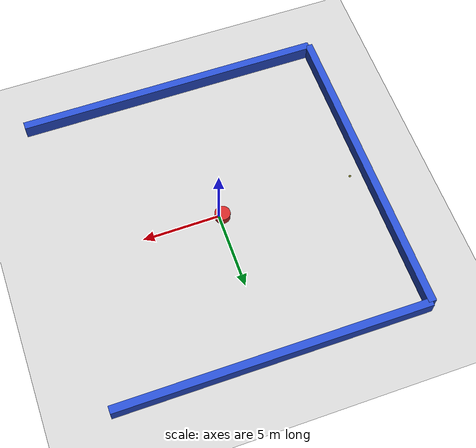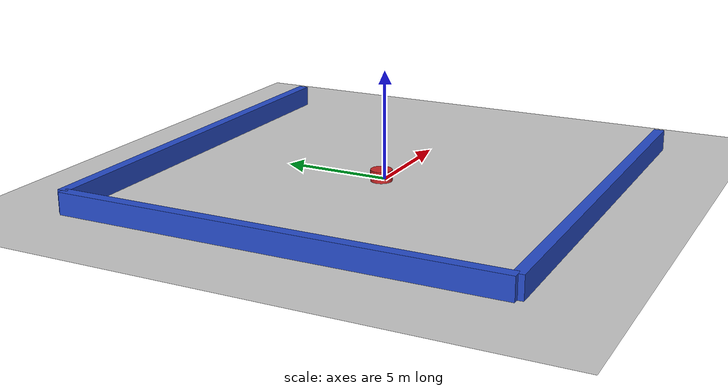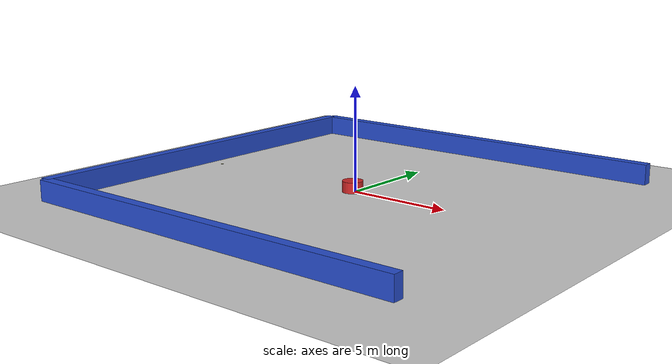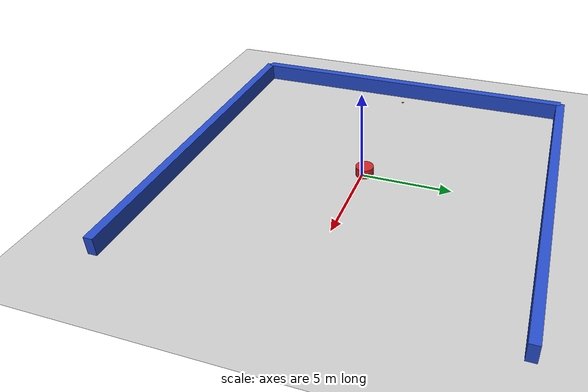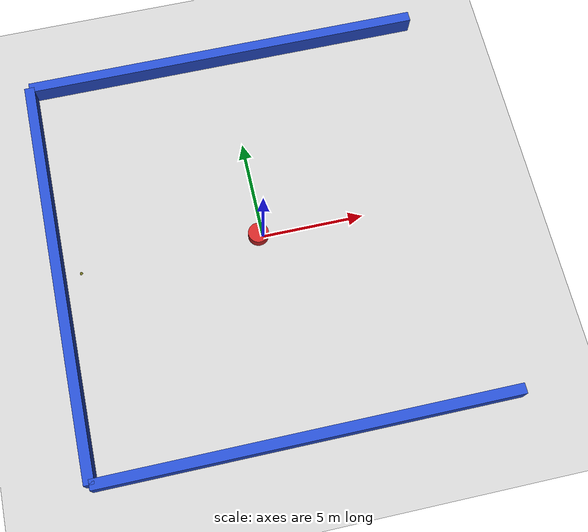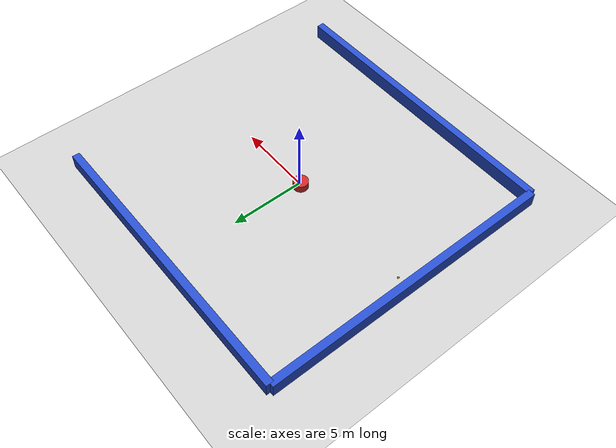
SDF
<sdf version="1.6">
   <world name="default">
      <include>
         <uri>model://ground_plane</uri>
      </include>
      <include>
         <uri>model://sun</uri>
      </include>

    <model name="mediumlibobs_177">
      <static>1</static>
      <pose frame="">-0.225000 0.075000 0.000000 0.000000 0.000000 0.000000</pose>
      <link name="link">
        <inertial>
          <mass>1</mass>
          <inertia>
            <ixx>0.145833</ixx>
            <ixy>0</ixy>
            <ixz>0</ixz>
            <iyy>0.145833</iyy>
            <iyz>0</iyz>
            <izz>0.125</izz>
          </inertia>
        </inertial>
        <collision name="collision">
           <geometry>
            <cylinder>
                <radius>0.5000</radius>
                 <length> 1 </length>
            </cylinder>
          </geometry>
           <surface>
            <contact>
              <ode />
            </contact>
            <bounce />
            <friction>
              <torsional>
                <ode />
              </torsional>
              <ode />
            </friction>
          </surface>
        </collision>
        <visual name="visual">
           <geometry>
            <cylinder>
                <radius>0.5000</radius>
                 <length> 1 </length>
            </cylinder>
          </geometry>
          <material>
            <script>
              <name>Gazebo/Red</name>
              <uri>file://media/materials/scripts/gazebo.material</uri>
            </script>
          </material>
        </visual>
        <self_collide>0</self_collide>
        <kinematic>0</kinematic>
        <gravity>1</gravity>
      </link>
      <plugin name="mediumlibobs_177" filename="mediumlibobs_177.so" />
    </model>

    <model name="hardlibobs_102">
      <static>1</static>
      <pose frame="">-0.225000 0.075000 0.000000 0.000000 0.000000 0.000000</pose>
      <link name="link">
        <inertial>
          <mass>1</mass>
          <inertia>
            <ixx>0.145833</ixx>
            <ixy>0</ixy>
            <ixz>0</ixz>
            <iyy>0.145833</iyy>
            <iyz>0</iyz>
            <izz>0.125</izz>
          </inertia>
        </inertial>
        <collision name="collision">
           <geometry>
            <cylinder>
                <radius>0.5000</radius>
                 <length> 1 </length>
            </cylinder>
          </geometry>
           <surface>
            <contact>
              <ode />
            </contact>
            <bounce />
            <friction>
              <torsional>
                <ode />
              </torsional>
              <ode />
            </friction>
          </surface>
        </collision>
        <visual name="visual">
           <geometry>
            <cylinder>
                <radius>0.5000</radius>
                 <length> 1 </length>
            </cylinder>
          </geometry>
          <material>
            <script>
              <name>Gazebo/Red</name>
              <uri>file://media/materials/scripts/gazebo.material</uri>
            </script>
          </material>
        </visual>
        <self_collide>0</self_collide>
        <kinematic>0</kinematic>
        <gravity>1</gravity>
      </link>
      <plugin name="hardlibobs_102" filename="hardlibobs_102.so" />
    </model>

    <model name="hardlibobs_54">
      <static>1</static>
      <pose frame="">-0.225000 0.075000 0.000000 0.000000 0.000000 0.000000</pose>
      <link name="link">
        <inertial>
          <mass>1</mass>
          <inertia>
            <ixx>0.145833</ixx>
            <ixy>0</ixy>
            <ixz>0</ixz>
            <iyy>0.145833</iyy>
            <iyz>0</iyz>
            <izz>0.125</izz>
          </inertia>
        </inertial>
        <collision name="collision">
           <geometry>
            <cylinder>
                <radius>0.5000</radius>
                 <length> 1 </length>
            </cylinder>
          </geometry>
           <surface>
            <contact>
              <ode />
            </contact>
            <bounce />
            <friction>
              <torsional>
                <ode />
              </torsional>
              <ode />
            </friction>
          </surface>
        </collision>
        <visual name="visual">
           <geometry>
            <cylinder>
                <radius>0.5000</radius>
                 <length> 1 </length>
            </cylinder>
          </geometry>
          <material>
            <script>
              <name>Gazebo/Red</name>
              <uri>file://media/materials/scripts/gazebo.material</uri>
            </script>
          </material>
        </visual>
        <self_collide>0</self_collide>
        <kinematic>0</kinematic>
        <gravity>1</gravity>
      </link>
      <plugin name="hardlibobs_54" filename="hardlibobs_54.so" />
    </model>

    <model name="hardlibobs_53">
      <static>1</static>
      <pose frame="">-0.225000 0.075000 0.000000 0.000000 0.000000 0.000000</pose>
      <link name="link">
        <inertial>
          <mass>1</mass>
          <inertia>
            <ixx>0.145833</ixx>
            <ixy>0</ixy>
            <ixz>0</ixz>
            <iyy>0.145833</iyy>
            <iyz>0</iyz>
            <izz>0.125</izz>
          </inertia>
        </inertial>
        <collision name="collision">
           <geometry>
            <cylinder>
                <radius>0.5000</radius>
                 <length> 1 </length>
            </cylinder>
          </geometry>
           <surface>
            <contact>
              <ode />
            </contact>
            <bounce />
            <friction>
              <torsional>
                <ode />
              </torsional>
              <ode />
            </friction>
          </surface>
        </collision>
        <visual name="visual">
           <geometry>
            <cylinder>
                <radius>0.5000</radius>
                 <length> 1 </length>
            </cylinder>
          </geometry>
          <material>
            <script>
              <name>Gazebo/Red</name>
              <uri>file://media/materials/scripts/gazebo.material</uri>
            </script>
          </material>
        </visual>
        <self_collide>0</self_collide>
        <kinematic>0</kinematic>
        <gravity>1</gravity>
      </link>
      <plugin name="hardlibobs_53" filename="hardlibobs_53.so" />
    </model>

    <model name="mediumlibobs_122">
      <static>1</static>
      <pose frame="">-0.225000 0.075000 0.000000 0.000000 0.000000 0.000000</pose>
      <link name="link">
        <inertial>
          <mass>1</mass>
          <inertia>
            <ixx>0.145833</ixx>
            <ixy>0</ixy>
            <ixz>0</ixz>
            <iyy>0.145833</iyy>
            <iyz>0</iyz>
            <izz>0.125</izz>
          </inertia>
        </inertial>
        <collision name="collision">
           <geometry>
            <cylinder>
                <radius>0.5000</radius>
                 <length> 1 </length>
            </cylinder>
          </geometry>
           <surface>
            <contact>
              <ode />
            </contact>
            <bounce />
            <friction>
              <torsional>
                <ode />
              </torsional>
              <ode />
            </friction>
          </surface>
        </collision>
        <visual name="visual">
           <geometry>
            <cylinder>
                <radius>0.5000</radius>
                 <length> 1 </length>
            </cylinder>
          </geometry>
          <material>
            <script>
              <name>Gazebo/Red</name>
              <uri>file://media/materials/scripts/gazebo.material</uri>
            </script>
          </material>
        </visual>
        <self_collide>0</self_collide>
        <kinematic>0</kinematic>
        <gravity>1</gravity>
      </link>
      <plugin name="mediumlibobs_122" filename="mediumlibobs_122.so" />
    </model>

    <model name="mediumlibobs_140">
      <static>1</static>
      <pose frame="">-0.225000 0.075000 0.000000 0.000000 0.000000 0.000000</pose>
      <link name="link">
        <inertial>
          <mass>1</mass>
          <inertia>
            <ixx>0.145833</ixx>
            <ixy>0</ixy>
            <ixz>0</ixz>
            <iyy>0.145833</iyy>
            <iyz>0</iyz>
            <izz>0.125</izz>
          </inertia>
        </inertial>
        <collision name="collision">
           <geometry>
            <cylinder>
                <radius>0.5000</radius>
                 <length> 1 </length>
            </cylinder>
          </geometry>
           <surface>
            <contact>
              <ode />
            </contact>
            <bounce />
            <friction>
              <torsional>
                <ode />
              </torsional>
              <ode />
            </friction>
          </surface>
        </collision>
        <visual name="visual">
           <geometry>
            <cylinder>
                <radius>0.5000</radius>
                 <length> 1 </length>
            </cylinder>
          </geometry>
          <material>
            <script>
              <name>Gazebo/Red</name>
              <uri>file://media/materials/scripts/gazebo.material</uri>
            </script>
          </material>
        </visual>
        <self_collide>0</self_collide>
        <kinematic>0</kinematic>
        <gravity>1</gravity>
      </link>
      <plugin name="mediumlibobs_140" filename="mediumlibobs_140.so" />
    </model>

    <model name="mediumlibobs_172">
      <static>1</static>
      <pose frame="">-0.225000 0.075000 0.000000 0.000000 0.000000 0.000000</pose>
      <link name="link">
        <inertial>
          <mass>1</mass>
          <inertia>
            <ixx>0.145833</ixx>
            <ixy>0</ixy>
            <ixz>0</ixz>
            <iyy>0.145833</iyy>
            <iyz>0</iyz>
            <izz>0.125</izz>
          </inertia>
        </inertial>
        <collision name="collision">
           <geometry>
            <cylinder>
                <radius>0.5000</radius>
                 <length> 1 </length>
            </cylinder>
          </geometry>
           <surface>
            <contact>
              <ode />
            </contact>
            <bounce />
            <friction>
              <torsional>
                <ode />
              </torsional>
              <ode />
            </friction>
          </surface>
        </collision>
        <visual name="visual">
           <geometry>
            <cylinder>
                <radius>0.5000</radius>
                 <length> 1 </length>
            </cylinder>
          </geometry>
          <material>
            <script>
              <name>Gazebo/Red</name>
              <uri>file://media/materials/scripts/gazebo.material</uri>
            </script>
          </material>
        </visual>
        <self_collide>0</self_collide>
        <kinematic>0</kinematic>
        <gravity>1</gravity>
      </link>
      <plugin name="mediumlibobs_172" filename="mediumlibobs_172.so" />
    </model>

    <model name="mediumlibobs_195">
      <static>1</static>
      <pose frame="">-0.225000 0.075000 0.000000 0.000000 0.000000 0.000000</pose>
      <link name="link">
        <inertial>
          <mass>1</mass>
          <inertia>
            <ixx>0.145833</ixx>
            <ixy>0</ixy>
            <ixz>0</ixz>
            <iyy>0.145833</iyy>
            <iyz>0</iyz>
            <izz>0.125</izz>
          </inertia>
        </inertial>
        <collision name="collision">
           <geometry>
            <cylinder>
                <radius>0.5000</radius>
                 <length> 1 </length>
            </cylinder>
          </geometry>
           <surface>
            <contact>
              <ode />
            </contact>
            <bounce />
            <friction>
              <torsional>
                <ode />
              </torsional>
              <ode />
            </friction>
          </surface>
        </collision>
        <visual name="visual">
           <geometry>
            <cylinder>
                <radius>0.5000</radius>
                 <length> 1 </length>
            </cylinder>
          </geometry>
          <material>
            <script>
              <name>Gazebo/Red</name>
              <uri>file://media/materials/scripts/gazebo.material</uri>
            </script>
          </material>
        </visual>
        <self_collide>0</self_collide>
        <kinematic>0</kinematic>
        <gravity>1</gravity>
      </link>
      <plugin name="mediumlibobs_195" filename="mediumlibobs_195.so" />
    </model>

    <model name="mediumlibobs_115">
      <static>1</static>
      <pose frame="">-0.225000 0.075000 0.000000 0.000000 0.000000 0.000000</pose>
      <link name="link">
        <inertial>
          <mass>1</mass>
          <inertia>
            <ixx>0.145833</ixx>
            <ixy>0</ixy>
            <ixz>0</ixz>
            <iyy>0.145833</iyy>
            <iyz>0</iyz>
            <izz>0.125</izz>
          </inertia>
        </inertial>
        <collision name="collision">
           <geometry>
            <cylinder>
                <radius>0.5000</radius>
                 <length> 1 </length>
            </cylinder>
          </geometry>
           <surface>
            <contact>
              <ode />
            </contact>
            <bounce />
            <friction>
              <torsional>
                <ode />
              </torsional>
              <ode />
            </friction>
          </surface>
        </collision>
        <visual name="visual">
           <geometry>
            <cylinder>
                <radius>0.5000</radius>
                 <length> 1 </length>
            </cylinder>
          </geometry>
          <material>
            <script>
              <name>Gazebo/Red</name>
              <uri>file://media/materials/scripts/gazebo.material</uri>
            </script>
          </material>
        </visual>
        <self_collide>0</self_collide>
        <kinematic>0</kinematic>
        <gravity>1</gravity>
      </link>
      <plugin name="mediumlibobs_115" filename="mediumlibobs_115.so" />
    </model>

    <model name="mediumlibobs_110">
      <static>1</static>
      <pose frame="">-0.225000 0.075000 0.000000 0.000000 0.000000 0.000000</pose>
      <link name="link">
        <inertial>
          <mass>1</mass>
          <inertia>
            <ixx>0.145833</ixx>
            <ixy>0</ixy>
            <ixz>0</ixz>
            <iyy>0.145833</iyy>
            <iyz>0</iyz>
            <izz>0.125</izz>
          </inertia>
        </inertial>
        <collision name="collision">
           <geometry>
            <cylinder>
                <radius>0.5000</radius>
                 <length> 1 </length>
            </cylinder>
          </geometry>
           <surface>
            <contact>
              <ode />
            </contact>
            <bounce />
            <friction>
              <torsional>
                <ode />
              </torsional>
              <ode />
            </friction>
          </surface>
        </collision>
        <visual name="visual">
           <geometry>
            <cylinder>
                <radius>0.5000</radius>
                 <length> 1 </length>
            </cylinder>
          </geometry>
          <material>
            <script>
              <name>Gazebo/Red</name>
              <uri>file://media/materials/scripts/gazebo.material</uri>
            </script>
          </material>
        </visual>
        <self_collide>0</self_collide>
        <kinematic>0</kinematic>
        <gravity>1</gravity>
      </link>
      <plugin name="mediumlibobs_110" filename="mediumlibobs_110.so" />
    </model>

    <model name="mediumlibobs_103">
      <static>1</static>
      <pose frame="">-0.225000 0.075000 0.000000 0.000000 0.000000 0.000000</pose>
      <link name="link">
        <inertial>
          <mass>1</mass>
          <inertia>
            <ixx>0.145833</ixx>
            <ixy>0</ixy>
            <ixz>0</ixz>
            <iyy>0.145833</iyy>
            <iyz>0</iyz>
            <izz>0.125</izz>
          </inertia>
        </inertial>
        <collision name="collision">
           <geometry>
            <cylinder>
                <radius>0.5000</radius>
                 <length> 1 </length>
            </cylinder>
          </geometry>
           <surface>
            <contact>
              <ode />
            </contact>
            <bounce />
            <friction>
              <torsional>
                <ode />
              </torsional>
              <ode />
            </friction>
          </surface>
        </collision>
        <visual name="visual">
           <geometry>
            <cylinder>
                <radius>0.5000</radius>
                 <length> 1 </length>
            </cylinder>
          </geometry>
          <material>
            <script>
              <name>Gazebo/Red</name>
              <uri>file://media/materials/scripts/gazebo.material</uri>
            </script>
          </material>
        </visual>
        <self_collide>0</self_collide>
        <kinematic>0</kinematic>
        <gravity>1</gravity>
      </link>
      <plugin name="mediumlibobs_103" filename="mediumlibobs_103.so" />
    </model>

    <model name="mediumlibobs_76">
      <static>1</static>
      <pose frame="">-0.225000 0.075000 0.000000 0.000000 0.000000 0.000000</pose>
      <link name="link">
        <inertial>
          <mass>1</mass>
          <inertia>
            <ixx>0.145833</ixx>
            <ixy>0</ixy>
            <ixz>0</ixz>
            <iyy>0.145833</iyy>
            <iyz>0</iyz>
            <izz>0.125</izz>
          </inertia>
        </inertial>
        <collision name="collision">
           <geometry>
            <cylinder>
                <radius>0.5000</radius>
                 <length> 1 </length>
            </cylinder>
          </geometry>
           <surface>
            <contact>
              <ode />
            </contact>
            <bounce />
            <friction>
              <torsional>
                <ode />
              </torsional>
              <ode />
            </friction>
          </surface>
        </collision>
        <visual name="visual">
           <geometry>
            <cylinder>
                <radius>0.5000</radius>
                 <length> 1 </length>
            </cylinder>
          </geometry>
          <material>
            <script>
              <name>Gazebo/Red</name>
              <uri>file://media/materials/scripts/gazebo.material</uri>
            </script>
          </material>
        </visual>
        <self_collide>0</self_collide>
        <kinematic>0</kinematic>
        <gravity>1</gravity>
      </link>
      <plugin name="mediumlibobs_76" filename="mediumlibobs_76.so" />
    </model>

      <model name="back_wall">
      <static>1</static>\   <pose frame="">-10 0 .5 0 0 0</pose>        <link name="box_link">

	<collision name="collision">
            <geometry>
              <box>
                <size>.5 20 1</size>
              </box>
            </geometry>
           <surface>
            <contact>
              <ode />
            </contact>
            <bounce />
            <friction>
              <torsional>
                <ode />
              </torsional>
              <ode />
            </friction>
          </surface>
        </collision>

          <visual name="visual">
            <geometry>
              <box>
                <size>.5 20 1</size>
              </box>
            </geometry>
          <material>
                 <script>
                     <name>Gazebo/Blue</name>
                         <uri>file://media/materials/scripts/gazebo.material</uri>
                         </script>
                     </material>
          </visual>
        </link>
      </model>
      <model name="top_wall">
      <static>1</static>
       <pose frame="">0 10 .5 0 0 0</pose>        <link name="box_link">

	<collision name="collision">
           <geometry>
              <box>
                <size>20 .5 1</size>
              </box>
            </geometry>
           <surface>
            <contact>
              <ode />
            </contact>
            <bounce />
            <friction>
              <torsional>
                <ode />
              </torsional>
              <ode />
            </friction>
          </surface>
        </collision>
          <visual name="visual">
            <geometry>
              <box>
                <size>20 .5 1</size>
              </box>
            </geometry>
          <material>
                 <script>
                     <name>Gazebo/Blue</name>
                         <uri>file://media/materials/scripts/gazebo.material</uri>
                         </script>
                     </material>
          </visual>
        </link>
      </model>
      <model name="bottom_wall">
      <static>1</static>
       <pose frame="">0 -10 .5 0 0 0</pose>        <link name="box_link">
	<collision name="collision">
            <geometry>
              <box>
                <size>20 .5 1</size>
              </box>
            </geometry>
           <surface>
            <contact>
              <ode />
            </contact>
            <bounce />
            <friction>
              <torsional>
                <ode />
              </torsional>
              <ode />
            </friction>
          </surface>
        </collision>
          <visual name="visual">
            <geometry>
              <box>
                <size>20 .5 1</size>
              </box>
            </geometry>
          <material>
                 <script>
                     <name>Gazebo/Blue</name>
                         <uri>file://media/materials/scripts/gazebo.material</uri>
                         </script>
                     </material>
          </visual>
        </link>
      </model>
   <model name="goal"><static>1</static><pose frame="">-9.00000 0.000000 0.000000 0.000000 0.000000 0.000000</pose><link name="link"><inertial><mass>1</mass><inertia><ixx>0.145833</ixx><ixy>0</ixy><ixz>0</ixz><iyy>0.145833</iyy><iyz>0</iyz><izz>0.125</izz></inertia></inertial><collision name="collision"><geometry><cylinder><radius>0.075000</radius><length>1</length></cylinder></geometry><max_contacts>10</max_contacts><surface><contact><ode /></contact><bounce /><friction><torsional><ode /></torsional><ode /></friction></surface></collision><visual name="visual"><geometry><cylinder><radius>0.075000</radius><length>0.001</length></cylinder></geometry><material><ambient>0 1 0 1</ambient><diffuse>0.4 0.4 0.1 1</diffuse></material><material><script><name>Gazebo/Grey</name><uri>file://media/materials/scripts/gazebo.material</uri></script></material></visual><self_collide>0</self_collide><kinematic>0</kinematic><gravity>0</gravity></link></model></world>
</sdf>
